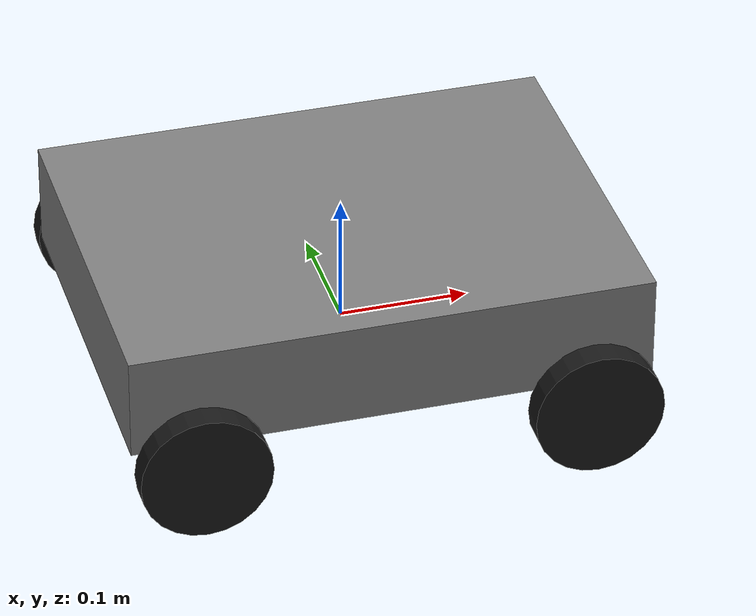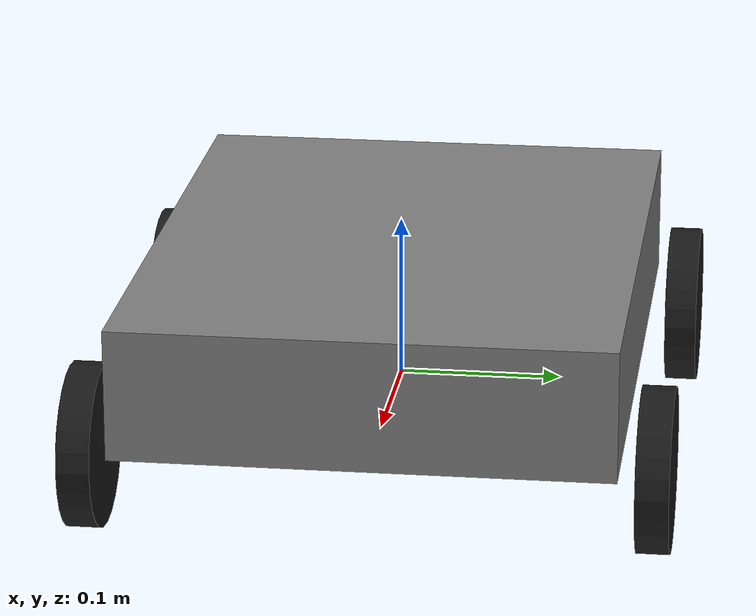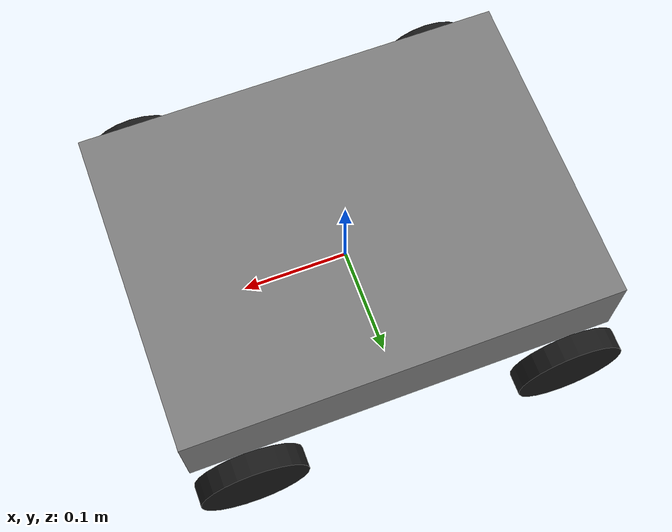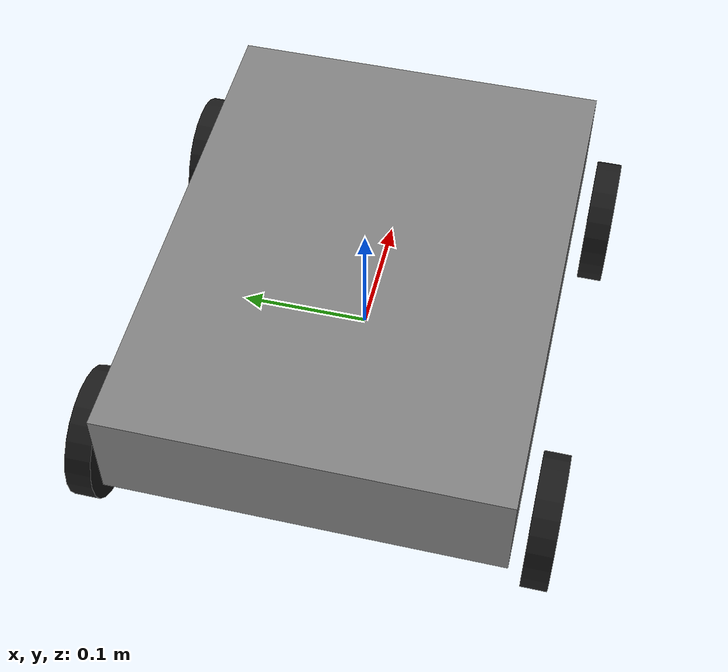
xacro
<?xml version="1.0"?>
<robot name="nr26_r2" xmlns:xacro="http://www.ros.org/wiki/xacro">

  <ros2_control name="GazeboSimSystem" type="system">
    <hardware>
      <plugin>gz_ros2_control/GazeboSimSystem</plugin>
    </hardware>
    <joint name="wheel_fl_joint"><command_interface name="velocity"/><state_interface name="position"/><state_interface name="velocity"/></joint>
    <joint name="wheel_fr_joint"><command_interface name="velocity"/><state_interface name="position"/><state_interface name="velocity"/></joint>
    <joint name="wheel_rl_joint"><command_interface name="velocity"/><state_interface name="position"/><state_interface name="velocity"/></joint>
    <joint name="wheel_rr_joint"><command_interface name="velocity"/><state_interface name="position"/><state_interface name="velocity"/></joint>
  </ros2_control>

  <xacro:property name="wheel_radius" value="0.05"/>
  <xacro:property name="wheel_width"  value="0.02"/>
  <xacro:property name="wheel_mass"   value="0.5"/>
  <xacro:property name="base_length" value="0.4"/>
  <xacro:property name="base_width"  value="0.3"/>
  <xacro:property name="base_height" value="0.08"/>
  <xacro:property name="base_mass"   value="10.0"/>

  <link name="base_link"/>

  <link name="chassis">
    <visual>
      <geometry><box size="${base_length} ${base_width} ${base_height}"/></geometry>
      <material name="gray"><color rgba="0.5 0.5 0.5 1.0"/></material>
    </visual>
    <collision>
      <geometry><box size="${base_length} ${base_width} ${base_height}"/></geometry>
    </collision>
    <inertial>
      <origin xyz="0 0 0" rpy="0 0 0"/>
      <mass value="${base_mass}"/>
      <inertia ixx="0.1" ixy="0.0" ixz="0.0" iyy="0.1" iyz="0.0" izz="0.1"/>
    </inertial>
  </link>

  <joint name="base_chassis_joint" type="fixed">
    <parent link="base_link"/>
    <child link="chassis"/>
    <origin xyz="0 0 ${wheel_radius}" rpy="0 0 0"/>
  </joint>

  <xacro:macro name="wheel" params="name x y">
    <link name="${name}">
      <visual>
        <origin rpy="${pi/2} 0 0" xyz="0 0 0"/>
        <geometry><cylinder radius="${wheel_radius}" length="${wheel_width}"/></geometry>
        <material name="black"><color rgba="0.1 0.1 0.1 1.0"/></material>
      </visual>
      <collision>
        <origin rpy="${pi/2} 0 0" xyz="0 0 0"/>
        <geometry><cylinder radius="${wheel_radius}" length="${wheel_width}"/></geometry>
      </collision>
      <inertial>
        <origin rpy="${pi/2} 0 0" xyz="0 0 0"/>
        <mass value="${wheel_mass}"/>
        <inertia ixx="0.001" ixy="0.0" ixz="0.0" iyy="0.001" iyz="0.0" izz="0.001"/>
      </inertial>
    </link>

    <joint name="${name}_joint" type="continuous">
      <parent link="chassis"/>
      <child link="${name}"/>
      <origin xyz="${x} ${y} -${wheel_radius}" rpy="0 0 0"/>
      <axis xyz="0 1 0"/>
    </joint>

    <gazebo reference="${name}">
      <mu1 value="1.0"/>
      <mu2 value="1.0"/>
      <kp value="1000000.0" />
      <kd value="1.0" />
    </gazebo>
  </xacro:macro>

  <xacro:wheel name="wheel_fl" x="0.15" y="0.17"/>
  <xacro:wheel name="wheel_fr" x="0.15" y="-0.17"/>
  <xacro:wheel name="wheel_rl" x="-0.15" y="0.17"/>
  <xacro:wheel name="wheel_rr" x="-0.15" y="-0.17"/>

  <gazebo>
    <plugin name="gz_ros2_control::GazeboSimROS2ControlPlugin" filename="gz_ros2_control-system">
      <parameters>$(find nr26_r2_sim)/config/nr26_r2_controllers.yaml</parameters>
    </plugin>
  </gazebo>

</robot>
